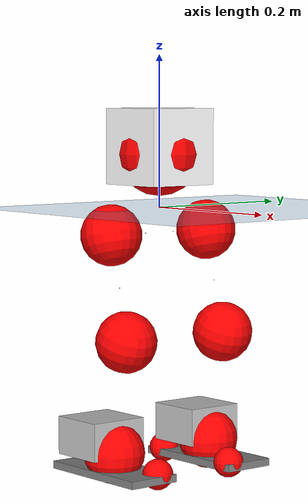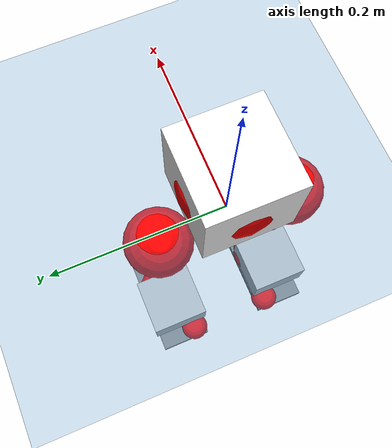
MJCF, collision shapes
<mujoco model="pi_12dof_release_v1">
  <compiler angle="radian" assetdir="assets" balanceinertia="true" inertiafromgeom="false"/>

  <option timestep="0.005" density="1.2" viscosity="2e-05"/>

  <size nkey="1"/>

  <visual>
    <quality shadowsize="8192"/>
    <map shadowclip="0.5"/>
  </visual>

  <default>
    <default class="/">
      <joint armature="0.01" damping="0.01" frictionloss="0.01"/>
      <geom contype="0" conaffinity="0" group="1" solref="-1000 -80"/>
      <site size="0.01 0.005 0.005" group="5"/>
      <general forcelimited="true" biastype="affine" gainprm="20" biasprm="0 -20 -0.5"/>
      <default class="foot">
        <geom size="0.0845 0.036 0.005" type="box" condim="6" group="4" priority="1" friction="0.9 0.2 0.2" solimp="0.015 1 0.005"/>
      </default>
      <default class="reward_collision_sphere">
        <geom group="5" rgba="1 0 0 1"/>
      </default>
    </default>
  </default>

  <asset>
    <texture type="skybox" colorspace="auto" name="//unnamed_texture_0" builtin="gradient" rgb1="0.95 0.95 0.95" rgb2="0.95 0.95 0.95" width="100" height="600"/>
    <texture type="2d" colorspace="auto" name="texplane" builtin="checker" rgb1="0.345 0.575 0.748" rgb2="0.345 0.575 0.748" markrgb="1 1 1" width="512" height="512"/>
    <material name="MatPlane" class="/" texture="texplane" texuniform="true" texrepeat="2 2" specular="0.9"/>
    <mesh name="baselink_1" class="/" file="baselink_1.STL"/>
    <mesh name="r_hip_pitch_link" class="/" file="r_hip_pitch_link.STL"/>
    <mesh name="r_hip_roll_link" class="/" file="r_hip_roll_link.STL"/>
    <mesh name="r_thigh_link" class="/" file="r_thigh_link.STL"/>
    <mesh name="r_calf_link" class="/" file="r_calf_link.STL"/>
    <mesh name="r_ankle_pitch_link" class="/" file="r_ankle_pitch_link.STL"/>
    <mesh name="r_ankle_roll_link" class="/" file="r_ankle_roll_link.STL"/>
    <mesh name="l_hip_pitch_link" class="/" file="l_hip_pitch_link.STL"/>
    <mesh name="l_hip_roll_link" class="/" file="l_hip_roll_link.STL"/>
    <mesh name="l_thigh_link" class="/" file="l_thigh_link.STL"/>
    <mesh name="l_calf_link" class="/" file="l_calf_link.STL"/>
    <mesh name="l_ankle_pitch_link" class="/" file="l_ankle_pitch_link.STL"/>
    <mesh name="l_ankle_roll_link" class="/" file="l_ankle_roll_link.STL"/>
  </asset>

  <worldbody>
    <geom name="floor" class="/" size="100 100 0.125" type="plane" group="0" material="MatPlane"/>
    <light name="toplight_shadow" class="/" pos="0 0 5" dir="0.0990148 0.0990148 -0.990148" type="directional" ambient="0.04 0.04 0.04" diffuse="0.55 0.55 0.55" specular="0.12 0.12 0.12"/>
    <light name="toplight_fill" class="/" pos="0 0 5" dir="0.0990148 0.0990148 -0.990148" type="directional" castshadow="false" ambient="0.04 0.04 0.04" diffuse="0.3 0.3 0.3" specular="0.08 0.08 0.08"/>
    <body name="trunk">
      <inertial pos="0.00242324 -5.699e-05 0.0403008" quat="0.695312 0.00968645 0.00943283 0.718581" mass="2.1609" diaginertia="0.00978249 0.00901239 0.00416199"/>
      <joint name="//unnamed_joint_0" type="free"/>
      <geom name="//unnamed_geom_1" class="/" type="mesh" density="0" rgba="1 1 1 1" mesh="baselink_1"/>
      <geom name="//unnamed_geom_2" class="/" size="0.05 0.05 0.05" pos="0 0 0.08" type="box" rgba="1 1 1 1"/>
      <geom name="//unnamed_geom_3" class="reward_collision_sphere" size="0.055" pos="0 0 0.07"/>
      <site name="imu" class="/" pos="0 0 0"/>
      <camera name="track" class="/" pos="0 -2 0" quat="0.707107 0.707107 0 0" mode="trackcom"/>
      <camera name="ego_camera" class="/" pos="0.075 0 0.18" quat="-0.5 -0.5 0.5 0.5"/>
      <body name="r_hip_pitch_link" pos="-5.1979e-05 -0.0233 -0.033" quat="0.992198 0 -0.124675 0">
        <inertial pos="0.00089428 -0.0552774 -0.00027276" quat="-0.0190163 0.705972 -0.0283274 0.707417" mass="0.369998" diaginertia="0.000108547 9.80557e-05 8.30673e-05"/>
        <joint name="r_hip_pitch_joint" class="/" pos="0 0 0" axis="0 -1 0" range="-1.75 1.25"/>
        <geom name="//unnamed_geom_4" class="/" type="mesh" density="0" rgba="0.75294 0.75294 0.75294 1" mesh="r_hip_pitch_link"/>
        <geom name="//unnamed_geom_5" class="/" size="0.0005 0.0005 0.0005" type="box" rgba="0.75294 0.75294 0.75294 1"/>
        <body name="r_hip_roll_link" pos="0.00025 -0.0568 0">
          <inertial pos="-0.00180153 0.00025956 -0.0608194" quat="0.705929 -0.0791259 -0.0825487 0.698992" mass="0.388516" diaginertia="0.000334209 0.00027814 0.000128441"/>
          <joint name="r_hip_roll_joint" class="/" pos="0 0 0" axis="-1 0 0" range="-0.12 0.5"/>
          <geom name="//unnamed_geom_6" class="/" type="mesh" density="0" rgba="0.75294 0.75294 0.75294 1" mesh="r_hip_roll_link"/>
          <geom name="//unnamed_geom_7" class="/" size="0.0005 0.0005 0.0005" type="box" rgba="0.75294 0.75294 0.75294 1"/>
          <geom name="//unnamed_geom_8" class="reward_collision_sphere" size="0.04"/>
          <body name="r_thigh_link" pos="-0.00025 0 -0.06925">
            <inertial pos="0 0.00116854 -0.047559" quat="0.73728 0.675588 0 0" mass="0.112709" diaginertia="0.00012496 9.46591e-05 5.79209e-05"/>
            <joint name="r_thigh_joint" class="/" pos="0 0 0" axis="0 0 -1" range="-0.3 0.6"/>
            <geom name="//unnamed_geom_9" class="/" type="mesh" density="0" rgba="0.75294 0.75294 0.75294 1" mesh="r_thigh_link"/>
            <geom name="//unnamed_geom_10" class="/" size="0.0005 0.0005 0.0005" type="box" rgba="0.75294 0.75294 0.75294 1"/>
            <body name="r_calf_link" pos="0 -0.0027 -0.07025" quat="0.947651 0 0.319309 0">
              <inertial pos="-0.00026627 -0.00116537 -0.0697121" quat="0.999984 -0.00311529 0.000122098 0.00472349" mass="0.813742" diaginertia="0.00352123 0.00349959 0.000174551"/>
              <joint name="r_calf_joint" class="/" pos="0 0 0" axis="0 -1 0" range="-1.65 0.65"/>
              <geom name="//unnamed_geom_11" class="/" type="mesh" density="0" rgba="0.75294 0.75294 0.75294 1" mesh="r_calf_link"/>
              <geom name="//unnamed_geom_12" class="/" size="0.0005 0.0005 0.0005" type="box" rgba="0.75294 0.75294 0.75294 1"/>
              <geom name="//unnamed_geom_13" class="reward_collision_sphere" size="0.04"/>
              <body name="r_ankle_pitch_link" pos="0 0 -0.14" quat="0.980067 0 -0.198669 0">
                <inertial pos="0.00467932 0.00347699 0" quat="0.00221869 0.707103 -0.00221869 0.707103" mass="0.175924" diaginertia="0.00030766 0.000221794 0.000119806"/>
                <joint name="r_ankle_pitch_joint" class="/" pos="0 0 0" axis="0 -1 0" range="-1.3 0.5"/>
                <geom name="//unnamed_geom_14" class="/" type="mesh" density="0" rgba="0.75294 0.75294 0.75294 1" mesh="r_ankle_pitch_link"/>
                <geom name="//unnamed_geom_15" class="/" size="0.039 0.04 0.025" type="box" rgba="0.75294 0.75294 0.75294 1"/>
                <body name="r_ankle_roll_link" pos="0.07525 0.0027 0">
                  <inertial pos="-0.0238368 0.00019256 -0.0144649" quat="0.5599 0.43068 0.434161 0.559045" mass="0.518685" diaginertia="0.00113169 0.00103133 0.000283273"/>
                  <joint name="r_ankle_roll_joint" class="/" pos="0 0 0" axis="-1 0 0" range="-0.15 0.15"/>
                  <geom name="//unnamed_geom_16" class="/" type="mesh" density="0" rgba="0.75294 0.75294 0.75294 1" mesh="r_ankle_roll_link"/>
                  <geom name="//unnamed_geom_17" class="/" type="mesh" rgba="0.75294 0.75294 0.75294 1" mesh="r_ankle_roll_link"/>
                  <geom name="right_foot" class="foot" pos="-0.051 0 -0.044"/>
                  <geom name="//unnamed_geom_19" class="reward_collision_sphere" size="0.04" pos="-0.05 0 -0.02"/>
                  <geom name="//unnamed_geom_20" class="reward_collision_sphere" size="0.02" pos="0.015 0.02 -0.04"/>
                  <geom name="//unnamed_geom_21" class="reward_collision_sphere" size="0.02" pos="-0.12 0.02 -0.04"/>
                  <site name="right_foot" class="foot" pos="-0.051 0 -0.044"/>
                </body>
              </body>
            </body>
          </body>
        </body>
      </body>
      <body name="l_hip_pitch_link" pos="-5.1979e-05 0.0233 -0.033" quat="0.992198 0 -0.124675 0">
        <inertial pos="0.00086268 0.0544191 -0.00025859" quat="-0.0385995 0.705608 0.0295548 0.706932" mass="0.389686" diaginertia="0.000128344 0.000105107 0.000100719"/>
        <joint name="l_hip_pitch_joint" class="/" pos="0 0 0" axis="0 1 0" range="-1.25 1.75"/>
        <geom name="//unnamed_geom_22" class="/" type="mesh" density="0" rgba="0.75294 0.75294 0.75294 1" mesh="l_hip_pitch_link"/>
        <geom name="//unnamed_geom_23" class="/" size="0.0005 0.0005 0.0005" type="box" rgba="0.75294 0.75294 0.75294 1"/>
        <body name="l_hip_roll_link" pos="0 0.0568 0">
          <inertial pos="-0.00207707 0.00026598 -0.0608194" quat="0.699248 -0.0752466 -0.0779987 0.706616" mass="0.388516" diaginertia="0.000333211 0.000277592 0.000128507"/>
          <joint name="l_hip_roll_joint" class="/" pos="0 0 0" axis="-1 0 0" range="-0.5 0.12"/>
          <geom name="//unnamed_geom_24" class="/" type="mesh" density="0" rgba="0.75294 0.75294 0.75294 1" mesh="l_hip_roll_link"/>
          <geom name="//unnamed_geom_25" class="/" size="0.0005 0.0005 0.0005" type="box" rgba="0.75294 0.75294 0.75294 1"/>
          <geom name="//unnamed_geom_26" class="reward_collision_sphere" size="0.04"/>
          <body name="l_thigh_link" pos="0 0 -0.06925">
            <inertial pos="0 -0.00115822 -0.047559" quat="0.67539 0.737461 0 0" mass="0.112709" diaginertia="0.00012497 9.46626e-05 5.79174e-05"/>
            <joint name="l_thigh_joint" class="/" pos="0 0 0" axis="0 0 -1" range="-0.6 0.3"/>
            <geom name="//unnamed_geom_27" class="/" type="mesh" density="0" rgba="0.75294 0.75294 0.75294 1" mesh="l_thigh_link"/>
            <geom name="//unnamed_geom_28" class="/" size="0.0005 0.0005 0.0005" type="box" rgba="0.75294 0.75294 0.75294 1"/>
            <body name="l_calf_link" pos="0 0 -0.07025" quat="0.947651 0 0.319309 0">
              <inertial pos="0.00026627 0.00386537 -0.0697121" quat="0.999984 0.00311529 -0.000122098 0.00472349" mass="0.813742" diaginertia="0.00352123 0.00349959 0.000174551"/>
              <joint name="l_calf_joint" class="/" pos="0 0 0" axis="0 1 0" range="-0.65 1.65"/>
              <geom name="//unnamed_geom_29" class="/" type="mesh" density="0" rgba="0.75294 0.75294 0.75294 1" mesh="l_calf_link"/>
              <geom name="//unnamed_geom_30" class="/" size="0.0005 0.0005 0.0005" type="box" rgba="0.75294 0.75294 0.75294 1"/>
              <geom name="//unnamed_geom_31" class="reward_collision_sphere" size="0.04"/>
              <body name="l_ankle_pitch_link" pos="0 0 -0.14" quat="0.980067 0 -0.198669 0">
                <inertial pos="0.00467932 -0.00077699 0" quat="-0.00221869 0.707103 0.00221869 0.707103" mass="0.175924" diaginertia="0.00030766 0.000221794 0.000119806"/>
                <joint name="l_ankle_pitch_joint" class="/" pos="0 0 0" axis="0 1 0" range="-0.5 1.3"/>
                <geom name="//unnamed_geom_32" class="/" type="mesh" density="0" rgba="0.75294 0.75294 0.75294 1" mesh="l_ankle_pitch_link"/>
                <geom name="//unnamed_geom_33" class="/" size="0.039 0.04 0.025" type="box" rgba="0.75294 0.75294 0.75294 1"/>
                <body name="l_ankle_roll_link" pos="0.07525 0 0">
                  <inertial pos="-0.0238368 0.00019256 -0.0144649" quat="0.5599 0.43068 0.434161 0.559045" mass="0.518685" diaginertia="0.00113169 0.00103133 0.000283273"/>
                  <joint name="l_ankle_roll_joint" class="/" pos="0 0 0" axis="-1 0 0" range="-0.15 0.15"/>
                  <geom name="//unnamed_geom_34" class="/" type="mesh" density="0" rgba="0.75294 0.75294 0.75294 1" mesh="l_ankle_roll_link"/>
                  <geom name="//unnamed_geom_35" class="/" type="mesh" rgba="0.75294 0.75294 0.75294 1" mesh="l_ankle_roll_link"/>
                  <geom name="left_foot" class="foot" pos="-0.051 0 -0.044"/>
                  <geom name="//unnamed_geom_37" class="reward_collision_sphere" size="0.04" pos="-0.05 0 -0.02"/>
                  <geom name="//unnamed_geom_38" class="reward_collision_sphere" size="0.02" pos="0.015 -0.02 -0.04"/>
                  <geom name="//unnamed_geom_39" class="reward_collision_sphere" size="0.02" pos="-0.12 -0.02 -0.04"/>
                  <site name="left_foot" class="foot" pos="-0.051 0 -0.044"/>
                </body>
              </body>
            </body>
          </body>
        </body>
      </body>
    </body>
  </worldbody>

  <contact>
    <pair class="/" geom1="floor" geom2="right_foot" name="//unnamed_contact_1"/>
    <pair class="/" geom1="floor" geom2="left_foot" name="//unnamed_contact_0"/>
  </contact>

  <actuator>
    <general name="r_hip_pitch_joint" class="/" joint="r_hip_pitch_joint" forcerange="-21 21"/>
    <general name="r_hip_roll_joint" class="/" joint="r_hip_roll_joint" forcerange="-21 21"/>
    <general name="r_thigh_joint" class="/" joint="r_thigh_joint" forcerange="-21 21"/>
    <general name="r_calf_joint" class="/" joint="r_calf_joint" forcerange="-21 21"/>
    <general name="r_ankle_pitch_joint" class="/" joint="r_ankle_pitch_joint" forcerange="-21 21"/>
    <general name="r_ankle_roll_joint" class="/" joint="r_ankle_roll_joint" forcerange="-21 21"/>
    <general name="l_hip_pitch_joint" class="/" joint="l_hip_pitch_joint" forcerange="-21 21"/>
    <general name="l_hip_roll_joint" class="/" joint="l_hip_roll_joint" forcerange="-21 21"/>
    <general name="l_thigh_joint" class="/" joint="l_thigh_joint" forcerange="-21 21"/>
    <general name="l_calf_joint" class="/" joint="l_calf_joint" forcerange="-21 21"/>
    <general name="l_ankle_pitch_joint" class="/" joint="l_ankle_pitch_joint" forcerange="-21 21"/>
    <general name="l_ankle_roll_joint" class="/" joint="l_ankle_roll_joint" forcerange="-21 21"/>
  </actuator>

  <sensor>
    <gyro site="imu" name="imu_angular_velocity"/>
    <velocimeter site="imu" name="imu_linear_velocity"/>
    <framelinvel objtype="site" objname="left_foot" name="left_foot_global_linear_velocity"/>
    <framelinvel objtype="site" objname="right_foot" name="right_foot_global_linear_velocity"/>
  </sensor>

  <keyframe>
    <key name="home" qpos="0 0 0.291 1 0 0 0 0.4 0 0 -0.8 0.4 0 -0.4 0 0 0.8 -0.4 0"/>
  </keyframe>
</mujoco>
